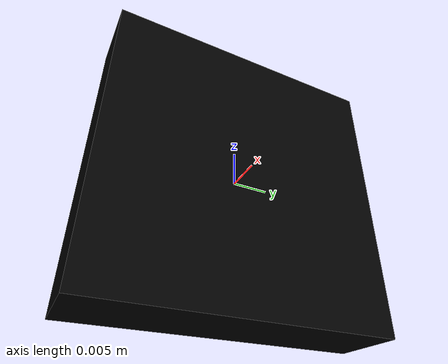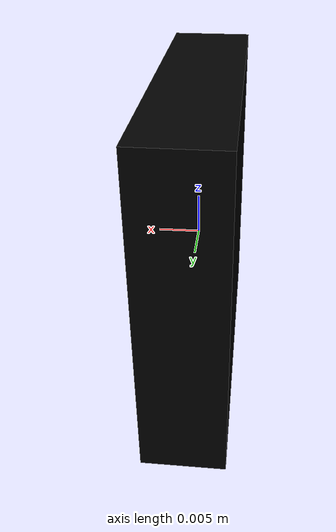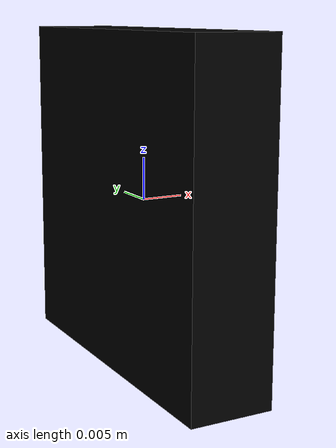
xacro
<robot xmlns:xacro="http://www.ros.org/wiki/xacro" name="camera">

  <!-- 讓相機模型為靜態物件 -->
  <gazebo>
    <static>true</static>
  </gazebo>

  <material name="black">
    <color rgba="0.0 0.0 0.0 1.0"/>
  </material>

  <xacro:macro name="usb_camera" params="prefix">
    <link name="${prefix}_link">
      <inertial>
        <mass value="0.1"/>
        <origin xyz="0 0 0"/>
        <inertia ixx="0.01" ixy="0.0" ixz="0.0" iyy="0.01" iyz="0.0" izz="0.01"/>
      </inertial>
      <visual>
        <geometry>
          <box size="0.01 0.04 0.04"/>
        </geometry>
        <material name="black"/>
      </visual>
      <collision>
        <geometry>
          <box size="0.01 0.04 0.04"/>
        </geometry>
      </collision>
    </link>

    <!-- Gazebo 相機感測器設定 -->
    <gazebo reference="${prefix}_link">
      <sensor type="camera" name="${prefix}_camera">
        <update_rate>30.0</update_rate>
        <camera>
          <horizontal_fov>1.3962634</horizontal_fov>
          <image>
            <width>1280</width>
            <height>720</height>
            <format>R8G8B8</format>
          </image>
          <clip>
            <near>0.02</near>
            <far>300</far>
          </clip>
        </camera>
        <plugin name="${prefix}_gazebo_camera" filename="libgazebo_ros_camera.so">
          <alwaysOn>true</alwaysOn>
          <updateRate>0.0</updateRate>
          <cameraName>/${prefix}/camera</cameraName>
          <imageTopicName>/${prefix}/image_raw</imageTopicName>
          <cameraInfoTopicName>/${prefix}/camera_info</cameraInfoTopicName>
          <frameName>${prefix}_link</frameName>
        </plugin>
      </sensor>
    </gazebo>
  </xacro:macro>

  <!-- 產生相機 -->
  <xacro:usb_camera prefix="usb_cam"/>
</robot>
